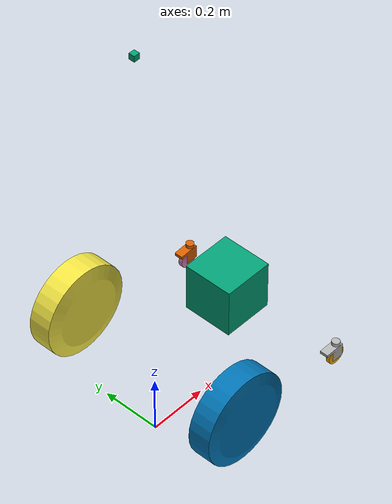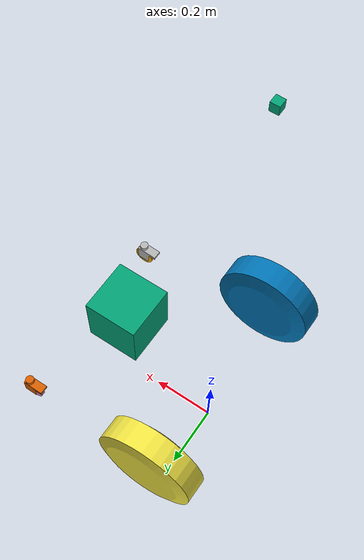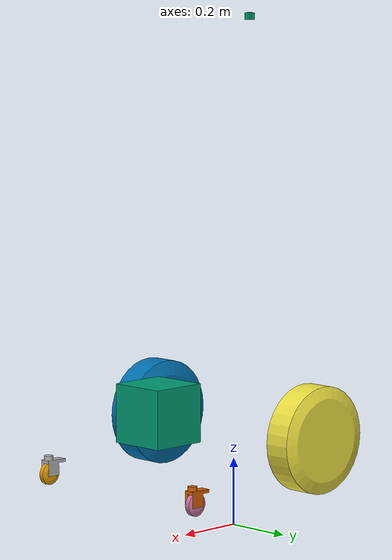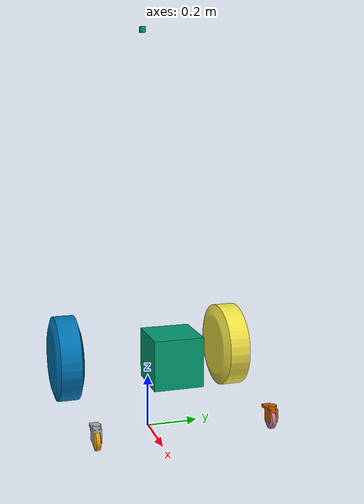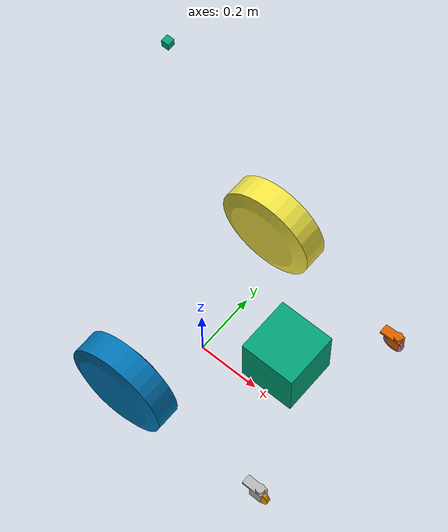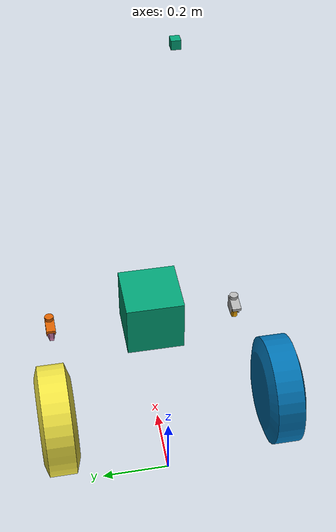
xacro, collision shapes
<?xml version="1.0"?>
<robot xmlns:xacro="http://www.ros.org/wiki/xacro" name="tracftec">

	<xacro:arg name="simulation" default="true"/>
	<xacro:arg name="mid360" default="true"/>

  <xacro:include filename="tracftec_core.urdf.xacro"/>
  <xacro:include filename="ros2_control.urdf.xacro"/>
  <xacro:include filename="ground_truth.urdf.xacro"/>

</robot>

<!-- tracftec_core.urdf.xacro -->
<robot xmlns:xacro="http://www.ros.org/wiki/xacro">

  <xacro:arg name="mid360" default="true"/>
  <xacro:include filename="base.urdf.xacro"/>
  <xacro:include filename="left_wheel.urdf.xacro"/>
  <xacro:include filename="right_wheel.urdf.xacro"/>
  <xacro:include filename="left_caster.urdf.xacro"/>
  <xacro:include filename="right_caster.urdf.xacro"/>
  <xacro:include filename="mid360.urdf.xacro"/>
  <xacro:include filename="imu.urdf.xacro"/>

  <link name="base_link"/>

  <joint name="base_link_to_base_joint" type="fixed">
    <parent link="base_link"/>
    <child link="base"/>
    <origin xyz="0 0 0.3"/>
  </joint>

  <link name="base"/>

  <xacro:base name="body" parent="base">
    <origin xyz="0.0569 -0.0028 0.2234" rpy="0 0 0"/>
  </xacro:base>

  <xacro:left_wheel name="left_wheel" parent="body">
    <origin xyz="-0.0569 0.3191 -0.2234" rpy="0 0 0"/>
  </xacro:left_wheel>

  <xacro:right_wheel name="right_wheel" parent="body">
    <origin xyz="-0.0569 -0.3135 -0.2234" rpy="0 0 0"/>
  </xacro:right_wheel>

  <xacro:left_caster name="left_caster" parent="body">
    <origin xyz="0.4024 0.3006 -0.3152" rpy="0 0 0"/>
  </xacro:left_caster>

  <xacro:right_caster name="right_caster" parent="body">
    <origin xyz="0.3933 -0.295 -0.3152" rpy="0 0 0"/>
  </xacro:right_caster>

  <xacro:mid360 name="livox_frame" parent="body">
    <origin xyz="-0.1201 0.0026 0.9655" rpy="${pi} 0 ${pi/2}"/>
  </xacro:mid360>

  <xacro:imu_sensor name="livox_imu" parent="livox_frame" topic="mid360_imu">
    <origin xyz="0.0 0.0 0.0" rpy="0 0 0"/>
  </xacro:imu_sensor>
</robot>

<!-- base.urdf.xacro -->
<robot xmlns:xacro="http://www.ros.org/wiki/xacro">

  <xacro:include filename="inertial_macros.urdf.xacro"/>

	<xacro:macro name="base" params="name parent *origin">

    <joint name="${name}_joint" type="fixed">
			<parent link="${parent}"/>
			<child link="${name}"/>
			<xacro:insert_block name="origin"/>
			<axis xyz="0 0 1"/>
		</joint>

    <link name="${name}">
			<visual>
        <origin xyz="0.25 0.0 -0.15" rpy="0 0 0"/>
          <geometry>
            <box size="0.17 0.17 0.17" />
          </geometry>
			</visual>
			<collision>
        <origin xyz="0.25 0.0 -0.15" rpy="0 0 0"/>
          <geometry>
            <box size="0.17 0.17 0.17" />
          </geometry>
			</collision>
      <xacro:inertial_box_decentered mass="300" x="0.17" y="0.17" z="0.17"> <!-- TODO replace with real values -->
          <origin xyz="0.25 0.0 -0.15" rpy="0 0 0"/>
      </xacro:inertial_box_decentered>
		</link>

	</xacro:macro>
</robot>

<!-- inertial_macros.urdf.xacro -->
<robot xmlns:xacro="http://www.ros.org/wiki/xacro" >

    <!-- Specify some standard inertial calculations en.wikipedia.org/wiki/List_of_moments_of_inertia -->
    <!-- These make use of xacro's mathematical functionality -->

    <xacro:macro name="inertial_sphere" params="mass radius">
        <inertial>
			      <xacro:insert_block name="origin"/>
            <mass value="${mass}" />
            <inertia ixx="${(2/5) * mass * (radius*radius)}" ixy="0.0" ixz="0.0"
                    iyy="${(2/5) * mass * (radius*radius)}" iyz="0.0"
                    izz="${(2/5) * mass * (radius*radius)}" />
        </inertial>
    </xacro:macro>

    <xacro:macro name="inertial_box" params="mass x y z">
        <inertial>
            <mass value="${mass}" />
            <inertia ixx="${(1/12) * mass * (y*y+z*z)}" ixy="0.0" ixz="0.0"
                    iyy="${(1/12) * mass * (x*x+z*z)}" iyz="0.0"
                    izz="${(1/12) * mass * (x*x+y*y)}" />
        </inertial>
    </xacro:macro>

    <xacro:macro name="inertial_box_decentered" params="mass x y z *origin">
        <inertial>
			      <xacro:insert_block name="origin"/>
            <mass value="${mass}" />
            <inertia ixx="${(1/12) * mass * (y*y+z*z)}" ixy="0.0" ixz="0.0"
                    iyy="${(1/12) * mass * (x*x+z*z)}" iyz="0.0"
                    izz="${(1/12) * mass * (x*x+y*y)}" />
        </inertial>
    </xacro:macro>

    <xacro:macro name="inertial_cylinder" params="mass length radius">
        <inertial>
            <mass value="${mass}" />
            <inertia ixx="${(1/12) * mass * (3*radius*radius + length*length)}" ixy="0.0" ixz="0.0"
                    iyy="${(1/12) * mass * (3*radius*radius + length*length)}" iyz="0.0"
                    izz="${(1/2) * mass * (radius*radius)}" />
        </inertial>
    </xacro:macro>
</robot>

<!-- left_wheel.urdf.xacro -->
<robot xmlns:xacro="http://www.ros.org/wiki/xacro">

  <xacro:include filename="inertial_macros.urdf.xacro"/>

	<xacro:arg name="ignition" default="false"/>

	<xacro:macro name="left_wheel" params="name parent *origin">

    <joint name="${name}_joint" type="continuous">
			<parent link="${parent}"/>
			<child link="${name}"/>
      <xacro:insert_block name="origin"/>
      <axis xyz="0 1 0"/>
		</joint>

    <link name="${name}">
			<visual>
				<geometry>
					<mesh filename="file://$(find tracftec_description)/meshes/left_wheel.stl"/>
				</geometry>
			</visual>
			<collision>
				<geometry>
					<mesh filename="file://$(find tracftec_description)/meshes/left_wheel.stl"/>
				</geometry>
			</collision>
      <xacro:inertial_box mass="3" x="0.17" y="0.00625" z="0.8"/> <!-- TODO replace shoulder axis mass with real value -->
		</link>

	</xacro:macro>
</robot>

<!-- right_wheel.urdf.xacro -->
<robot xmlns:xacro="http://www.ros.org/wiki/xacro">

  <xacro:include filename="inertial_macros.urdf.xacro"/>

	<xacro:arg name="ignition" default="false"/>

	<xacro:macro name="right_wheel" params="name parent *origin">

    <joint name="${name}_joint" type="continuous">
			<parent link="${parent}"/>
			<child link="${name}"/>
      <xacro:insert_block name="origin"/>
      <axis xyz="0 1 0"/>
		</joint>

    <link name="${name}">
			<visual>
				<geometry>
					<mesh filename="file://$(find tracftec_description)/meshes/right_wheel.stl"/>
				</geometry>
			</visual>
			<collision>
				<geometry>
					<mesh filename="file://$(find tracftec_description)/meshes/right_wheel.stl"/>
				</geometry>
			</collision>
      <xacro:inertial_box mass="3" x="0.17" y="0.00625" z="0.8"/> <!-- TODO replace shoulder axis mass with real value -->
		</link>

	</xacro:macro>
</robot>

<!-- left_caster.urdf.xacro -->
<robot xmlns:xacro="http://www.ros.org/wiki/xacro">

  <xacro:include filename="inertial_macros.urdf.xacro"/>

	<xacro:arg name="ignition" default="false"/>

	<xacro:macro name="left_caster" params="name parent *origin">

    <joint name="${name}_joint" type="continuous">
			<parent link="${parent}"/>
			<child link="${name}_pivot"/>
      <xacro:insert_block name="origin"/>
			<axis xyz="0 0 1"/>
		</joint>

    <link name="${name}_pivot">
			<visual>
				<geometry>
					<mesh filename="file://$(find tracftec_description)/meshes/left_caster_pivot.stl"/>
				</geometry>
			</visual>
			<collision>
				<geometry>
					<mesh filename="file://$(find tracftec_description)/meshes/left_caster_pivot.stl"/>
				</geometry>
			</collision>
      <xacro:inertial_box mass="0.05" x="0.17" y="0.00625" z="0.8"/> <!-- TODO replace shoulder axis mass with real value -->
		</link>

    <joint name="${name}_wheel_joint" type="continuous">
      <parent link="${name}_pivot"/>
      <child link="${name}_wheel"/>
      <origin xyz="0.0002 -0.0001 -0.031" rpy="0 0 0"/>
      <axis xyz="0 1 0"/>
    </joint>

    <link name="${name}_wheel">
			<visual>
				<geometry>
					<mesh filename="file://$(find tracftec_description)/meshes/left_caster_wheel.stl"/>
				</geometry>
			</visual>
			<collision>
				<geometry>
					<mesh filename="file://$(find tracftec_description)/meshes/left_caster_wheel.stl"/>
				</geometry>
			</collision>
      <xacro:inertial_box mass="0.05" x="0.17" y="0.00625" z="0.8"/> <!-- TODO replace shoulder axis mass with real value -->
		</link>
	</xacro:macro>
</robot>

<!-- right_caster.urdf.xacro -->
<robot xmlns:xacro="http://www.ros.org/wiki/xacro">

  <xacro:include filename="inertial_macros.urdf.xacro"/>

	<xacro:arg name="ignition" default="false"/>

	<xacro:macro name="right_caster" params="name parent *origin">

    <joint name="${name}_joint" type="continuous">
			<parent link="${parent}"/>
			<child link="${name}_pivot"/>
      <xacro:insert_block name="origin"/>
			<axis xyz="0 0 1"/>
		</joint>

    <link name="${name}_pivot">
			<visual>
				<geometry>
					<mesh filename="file://$(find tracftec_description)/meshes/right_caster_pivot.stl"/>
				</geometry>
			</visual>
			<collision>
				<geometry>
					<mesh filename="file://$(find tracftec_description)/meshes/right_caster_pivot.stl"/>
				</geometry>
			</collision>
      <xacro:inertial_box mass="0.05" x="0.17" y="0.00625" z="0.8"/> <!-- TODO replace shoulder axis mass with real value -->
		</link>

    <joint name="${name}_wheel_joint" type="continuous">
      <parent link="${name}_pivot"/>
      <child link="${name}_wheel"/>
      <origin xyz="0.0093 0.0001 -0.031" rpy="0 0 0"/>
      <axis xyz="0 1 0"/>
    </joint>

    <link name="${name}_wheel">
			<visual>
				<geometry>
					<mesh filename="file://$(find tracftec_description)/meshes/right_caster_wheel.stl"/>
				</geometry>
			</visual>
			<collision>
				<geometry>
					<mesh filename="file://$(find tracftec_description)/meshes/right_caster_wheel.stl"/>
				</geometry>
			</collision>
      <xacro:inertial_box mass="0.05" x="0.17" y="0.00625" z="0.8"/> <!-- TODO replace shoulder axis mass with real value -->
		</link>
	</xacro:macro>
</robot>

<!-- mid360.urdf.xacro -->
<robot xmlns:xacro="http://www.ros.org/wiki/xacro">

  <xacro:include filename="inertial_macros.urdf.xacro"/>

	<xacro:arg name="ignition" default="false"/>

  <xacro:property name="laser_min_range" value="0.1"/>
  <xacro:property name="laser_max_range" value="200.0"/>
  <xacro:property name="samples" value="40000"/>
  <xacro:property name="resolution" value="0.002"/>
  <xacro:property name="noise_mean" value="0.0"/>
  <xacro:property name="noise_stddev" value="0.01"/>

  <xacro:property name="mass" value="0.4" />
  <xacro:property name="length" value="0.1" />
  <xacro:property name="width" value="0.06" />
  <xacro:property name="height" value="0.06" />

	<xacro:macro name="mid360" params="name parent topic:='mid360_simulation' *origin">

    <joint name="${name}_joint" type="fixed">
			<parent link="${parent}"/>
			<child link="${name}"/>
      <xacro:insert_block name="origin"/>
		</joint>

    <link name="${name}">
			<visual>
				<geometry>
					<mesh filename="file://$(find trafctec_description)/meshes/mid360.stl"/>
				</geometry>
			</visual>
      <xacro:inertial_box mass="0.05" x="0.17" y="0.00625" z="0.8"/> <!-- TODO replace shoulder axis mass with real value -->
		</link>

		<xacro:if value="$(arg simulation)">
        <gazebo reference="${name}">
          <sensor type="ray" name="${name}">
            <pose>0 0 0 0 0 0</pose>
            <visualize>true</visualize>
            <update_rate>10</update_rate>
            <!-- This ray plgin is only for visualization. -->
            <plugin name="${name}_plugin" filename="libros2_livox.so">
              <ray>
                <scan>
                  <horizontal>
                    <samples>100</samples>
                    <resolution>1</resolution>
                    <min_angle>${0}</min_angle>
                    <max_angle>${2*pi}</max_angle>
                  </horizontal>
                  <vertical>
                    <samples>360</samples>
                    <resolution>1</resolution>
                    <min_angle>${-7.22/180*pi}</min_angle>
                    <max_angle>${55.22/180*pi}</max_angle>
                  </vertical>
                </scan>
                <range>
                  <min>${laser_min_range}</min>
                  <max>${laser_max_range}</max>
                  <resolution>${resolution}</resolution>
                </range>
                <noise>
                  <type>gaussian</type>
                  <mean>${noise_mean}</mean>
                  <stddev>${noise_stddev}</stddev>
                </noise>
              </ray>
              <visualize>false</visualize>
              <samples>${samples}</samples>
              <downsample>1</downsample>
              <csv_file_name>$(find ros2_livox_simulation)/scan_mode/mid360.csv</csv_file_name>
              <topic>mid360_Raw</topic>
              <ros>
                <remapping>mid360_Raw_PointCloud2:=${topic}</remapping>
              </ros>
            </plugin>
          </sensor>
        </gazebo>
    </xacro:if>
	</xacro:macro>
</robot>

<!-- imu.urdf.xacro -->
<robot xmlns:xacro="http://www.ros.org/wiki/xacro" name="imu">

<xacro:macro name="imu_sensor" params="name parent topic:='imu' *origin">
    <joint name="${name}_joint" type="fixed">
        <axis xyz="0 0 1" />
        <xacro:insert_block name="origin"/>
        <parent link="${parent}"/>
      <child link="${name}"/>
    </joint>

    <link name="${name}">
        <collision>
            <origin xyz="0 0 0" rpy="0 0 0"/>
            <geometry>
                <box size="0.02 0.02 0.02"/>
            </geometry>
        </collision>
        <visual>
            <origin xyz="0 0 0" rpy="0 0 0"/>
            <geometry>
                <box size="0.02 0.02 0.02"/>
            </geometry>
        </visual>
        <inertial>
            <mass value="0.001" />
            <origin xyz="0 0 0" rpy="0 0 0"/>
            <inertia ixx="0.00000015" ixy="0" ixz="0" iyy="0.00000015" iyz="0" izz="0.00000015" />
        </inertial>
    </link>

    <!-- Simulation -->
    <gazebo reference="${name}">
      <gravity>true</gravity>
      <sensor name="imu_sensor" type="imu">
          <always_on>true</always_on>
          <update_rate>100</update_rate>
          <visualize>true</visualize>
          <topic>__default_topic__</topic>
          <imu>
              <angular_velocity>
                  <x>
                      <noise type="gaussian">
                          <mean>0.0</mean>
                          <stddev>0.635e-3</stddev>
                          <bias_mean>0.0</bias_mean>
                          <bias_stddev>0.0</bias_stddev>
                      </noise>
                  </x>
                  <y>
                      <noise type="gaussian">
                          <mean>0.0</mean>
                          <stddev>0.635e-3</stddev>
                          <bias_mean>0.0</bias_mean>
                          <bias_stddev>0.0</bias_stddev>
                      </noise>
                  </y>
                  <z>
                      <noise type="gaussian">
                          <mean>0.0</mean>
                          <stddev>0.635e-3</stddev>
                          <bias_mean>0.0</bias_mean>
                          <bias_stddev>0.0</bias_stddev>
                      </noise>
                  </z>
              </angular_velocity>
              <linear_acceleration>
                  <x>
                      <noise type="gaussian">
                          <mean>0.0</mean>
                          <stddev>528.3e-6</stddev>
                          <bias_mean>0</bias_mean>
                          <bias_stddev>0</bias_stddev>
                      </noise>
                  </x>
                  <y>
                      <noise type="gaussian">
                          <mean>0.0</mean>
                          <stddev>528.3e-6</stddev>
                          <bias_mean>0.0</bias_mean>
                          <bias_stddev>0.0</bias_stddev>
                      </noise>
                  </y>
                  <z>
                      <noise type="gaussian">
                          <mean>0.0</mean>
                          <stddev>528.3e-6</stddev>
                          <bias_mean>0.0</bias_mean>
                          <bias_stddev>0.0</bias_stddev>
                      </noise>
                  </z>
              </linear_acceleration>
          </imu>
          <plugin filename="libgazebo_ros_imu_sensor.so" name="imu_plugin">
            <topicName>${topic}</topicName>
            <bodyName>${name}</bodyName>
            <updateRateHZ>100.0</updateRateHZ>
            <frameName>${name}</frameName>
            <initial_orientation_as_reference>false</initial_orientation_as_reference>
            <ros>
              <remapping>/imu_plugin/out:=${topic}</remapping>
            </ros>
          </plugin>
      </sensor>
  </gazebo>
</xacro:macro>

</robot>
